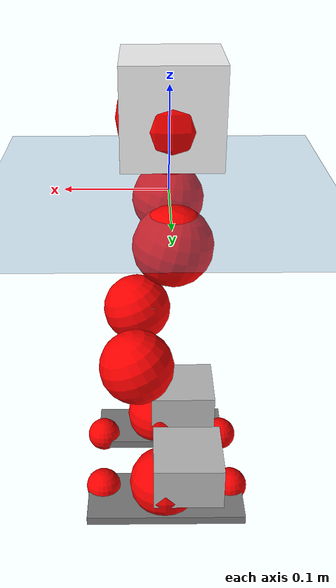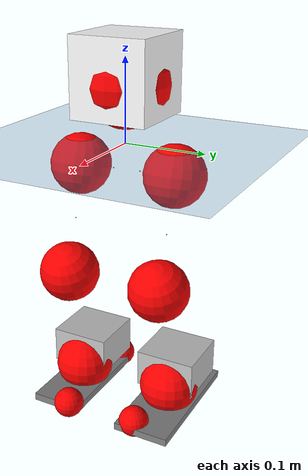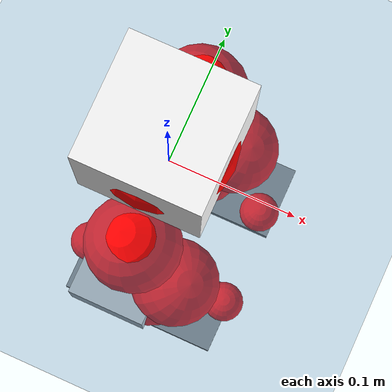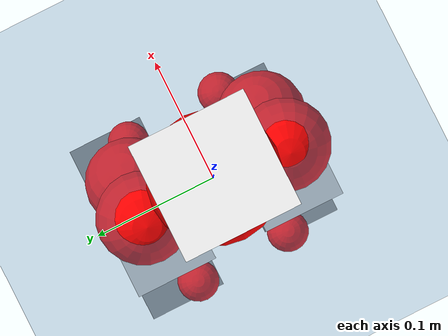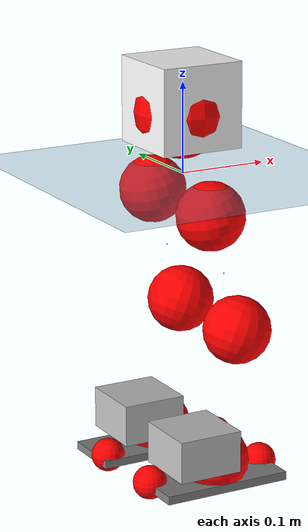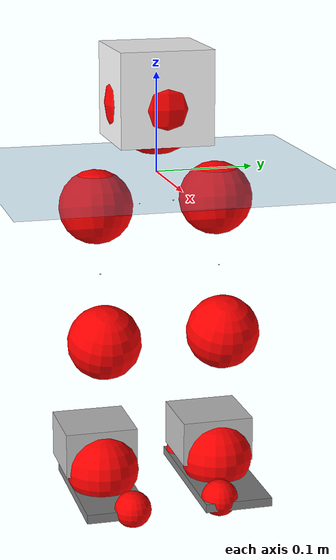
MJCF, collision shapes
<mujoco model="pi_12dof_release_v1">
  <compiler angle="radian" assetdir="assets" balanceinertia="true" inertiafromgeom="false"/>

  <option timestep="0.005" density="1.2" viscosity="2e-05"/>

  <size nkey="1"/>

  <visual>
    <quality shadowsize="8192"/>
    <map shadowclip="0.5"/>
  </visual>

  <default>
    <default class="/">
      <joint armature="0.01" damping="0.01" frictionloss="0.01"/>
      <geom contype="0" conaffinity="0" group="1" solref="-1000 -80"/>
      <site size="0.01 0.005 0.005" group="5"/>
      <general forcelimited="true" biastype="affine" gainprm="20" biasprm="0 -20 -0.5"/>
      <default class="foot">
        <geom size="0.0845 0.036 0.005" type="box" condim="6" group="4" priority="1" friction="0.9 0.2 0.2" solimp="0.015 1 0.005"/>
      </default>
      <default class="reward_collision_sphere">
        <geom group="5" rgba="1 0 0 1"/>
      </default>
    </default>
  </default>

  <asset>
    <texture type="skybox" colorspace="auto" name="//unnamed_texture_0" builtin="gradient" rgb1="0.95 0.95 0.95" rgb2="0.95 0.95 0.95" width="100" height="600"/>
    <texture type="2d" colorspace="auto" name="texplane" builtin="checker" rgb1="0.345 0.575 0.748" rgb2="0.345 0.575 0.748" markrgb="1 1 1" width="512" height="512"/>
    <material name="MatPlane" class="/" texture="texplane" texuniform="true" texrepeat="2 2" specular="0.9"/>
    <mesh name="baselink_1" class="/" file="baselink_1.STL"/>
    <mesh name="r_hip_pitch_link" class="/" file="r_hip_pitch_link.STL"/>
    <mesh name="r_hip_roll_link" class="/" file="r_hip_roll_link.STL"/>
    <mesh name="r_thigh_link" class="/" file="r_thigh_link.STL"/>
    <mesh name="r_calf_link" class="/" file="r_calf_link.STL"/>
    <mesh name="r_ankle_pitch_link" class="/" file="r_ankle_pitch_link.STL"/>
    <mesh name="r_ankle_roll_link" class="/" file="r_ankle_roll_link.STL"/>
    <mesh name="l_hip_pitch_link" class="/" file="l_hip_pitch_link.STL"/>
    <mesh name="l_hip_roll_link" class="/" file="l_hip_roll_link.STL"/>
    <mesh name="l_thigh_link" class="/" file="l_thigh_link.STL"/>
    <mesh name="l_calf_link" class="/" file="l_calf_link.STL"/>
    <mesh name="l_ankle_pitch_link" class="/" file="l_ankle_pitch_link.STL"/>
    <mesh name="l_ankle_roll_link" class="/" file="l_ankle_roll_link.STL"/>
  </asset>

  <worldbody>
    <geom name="floor" class="/" size="100 100 0.125" type="plane" group="0" material="MatPlane"/>
    <light name="toplight_shadow" class="/" pos="0 0 5" dir="0.0990148 0.0990148 -0.990148" type="directional" ambient="0.04 0.04 0.04" diffuse="0.55 0.55 0.55" specular="0.12 0.12 0.12"/>
    <light name="toplight_fill" class="/" pos="0 0 5" dir="0.0990148 0.0990148 -0.990148" type="directional" castshadow="false" ambient="0.04 0.04 0.04" diffuse="0.3 0.3 0.3" specular="0.08 0.08 0.08"/>
    <body name="trunk" pos="-0.00166811 0.000158784 0.000921751" quat="1 2.859e-05 0.000280223 4.01296e-05">
      <inertial pos="0.000464412 0.000127892 0.0398028" quat="0.695862 0.00656111 0.00628668 0.718118" mass="1.787" diaginertia="0.0114129 0.00318234 0.00380049"/>
      <joint name="//unnamed_joint_0" type="free"/>
      <geom name="//unnamed_geom_1" class="/" type="mesh" density="0" rgba="1 1 1 1" mesh="baselink_1"/>
      <geom name="//unnamed_geom_2" class="/" size="0.0469955 0.0469955 0.0469955" pos="0 0 0.0783084" type="box" rgba="1 1 1 1"/>
      <geom name="//unnamed_geom_3" class="reward_collision_sphere" size="0.051695" pos="0 0 0.0685198"/>
      <site name="imu" class="/" pos="-0.00167203 -0.00416211 0.00157501" size="0.0093991"/>
      <camera name="track" class="/" pos="0 -1.62217 0" quat="0.707107 0.707107 0 0" mode="trackcom"/>
      <camera name="ego_camera" class="/" pos="0.0772342 0 0.176194" quat="-0.5 -0.5 0.5 0.5"/>
      <body name="r_hip_pitch_link" pos="0.000316557 -0.0171016 -0.033339" quat="0.992221 -0.000224935 -0.12449 -0.000644863">
        <inertial pos="-0.000849423 -0.0451091 0.00120314" quat="-0.0192486 0.706183 -0.0281054 0.707209" mass="0.309046" diaginertia="0.000126534 3.42299e-05 7.47813e-05"/>
        <joint name="r_hip_pitch_joint" class="/" pos="0 0 0" axis="-0.0046914 -0.999983 -0.00337029" range="-1.74682 1.23727" armature="0.00943881" damping="0.0171113" frictionloss="0.00936229"/>
        <geom name="//unnamed_geom_4" class="/" type="mesh" density="0" rgba="0.75294 0.75294 0.75294 1" mesh="r_hip_pitch_link"/>
        <geom name="//unnamed_geom_5" class="/" size="0.000469955 0.000469955 0.000469955" type="box" rgba="0.75294 0.75294 0.75294 1"/>
        <body name="r_hip_roll_link" pos="8.57487e-05 -0.0452031 -0.000706104" quat="1 -2.51685e-06 2.39591e-06 -2.43303e-07">
          <inertial pos="0.00059305 0.000313279 -0.059413" quat="0.70621 -0.0793967 -0.0822322 0.698714" mass="0.324021" diaginertia="0.000386319 9.7546e-05 0.000117018"/>
          <joint name="r_hip_roll_joint" class="/" pos="0 0 0" axis="-0.999999 -0.000738497 -0.000697752" range="-0.133495 0.477245" armature="0.00875501" damping="0.00422284" frictionloss="0.00925377"/>
          <geom name="//unnamed_geom_6" class="/" type="mesh" density="0" rgba="0.75294 0.75294 0.75294 1" mesh="r_hip_roll_link"/>
          <geom name="//unnamed_geom_7" class="/" size="0.000469955 0.000469955 0.000469955" type="box" rgba="0.75294 0.75294 0.75294 1"/>
          <geom name="//unnamed_geom_8" class="reward_collision_sphere" size="0.0375964"/>
          <body name="r_thigh_link" pos="3.44421e-06 0.000317413 -0.0677259" quat="1 0.000170635 3.49714e-06 -0.000198351">
            <inertial pos="-0.000178961 5.46511e-05 -0.0466485" quat="0.740842 0.671678 0.00110301 0.000155599" mass="0.093127" diaginertia="0.000145881 3.28272e-05 5.22838e-05"/>
            <joint name="r_thigh_joint" class="/" pos="0 0 0" axis="0.00051015 -0.000538317 -1" range="-0.301148 0.582609" armature="0.00893891" damping="0" frictionloss="0.00941251"/>
            <geom name="//unnamed_geom_9" class="/" type="mesh" density="0" rgba="0.75294 0.75294 0.75294 1" mesh="r_thigh_link"/>
            <geom name="//unnamed_geom_10" class="/" size="0.000469955 0.000469955 0.000469955" type="box" rgba="0.75294 0.75294 0.75294 1"/>
            <body name="r_calf_link" pos="-1.88429e-05 -0.000283345 -0.0685251" quat="0.947692 0.000235271 0.319185 -0.000381646">
              <inertial pos="-7.49468e-05 -0.00124715 -0.0683281" quat="0.999986 -0.00334192 -0.000356624 0.0039807" mass="0.692613" diaginertia="0.00404202 0.00122338 0.000157504"/>
              <joint name="r_calf_joint" class="/" pos="0 0 0" axis="0.00110194 -0.999999 5.13743e-05" stiffness="0.002705" range="-1.64947 0.628216" armature="0.0104391" damping="0" frictionloss="0.010321"/>
              <geom name="//unnamed_geom_11" class="/" type="mesh" density="0" rgba="0.75294 0.75294 0.75294 1" mesh="r_calf_link"/>
              <geom name="//unnamed_geom_12" class="/" size="0.000469955 0.000469955 0.000469955" type="box" rgba="0.75294 0.75294 0.75294 1"/>
              <geom name="//unnamed_geom_13" class="reward_collision_sphere" size="0.0375964"/>
              <body name="r_ankle_pitch_link" pos="0.000272354 0.000169374 -0.136228" quat="0.980083 -5.97086e-05 -0.198588 -0.000861552">
                <inertial pos="0.00494315 0.000984081 0.000187239" quat="0.00379974 0.70863 -0.00238803 0.705566" mass="0.143926" diaginertia="0.00036049 7.96403e-05 0.000108075"/>
                <joint name="r_ankle_pitch_joint" class="/" pos="0 0 0" axis="-0.00962317 -0.99994 -0.00522482" range="-1.30836 0.50844" armature="0.00913634" damping="0.0098545" frictionloss="0.00952698"/>
                <geom name="//unnamed_geom_14" class="/" type="mesh" density="0" rgba="0.75294 0.75294 0.75294 1" mesh="r_ankle_pitch_link"/>
                <geom name="//unnamed_geom_15" class="/" size="0.0366565 0.0375964 0.0234977" type="box" rgba="0.75294 0.75294 0.75294 1"/>
                <body name="r_ankle_roll_link" pos="0.0786328 0.00238323 -0.000394637" quat="1 -1.14418e-05 -6.8177e-05 -3.66659e-05">
                  <inertial pos="-0.0256159 9.42756e-05 -0.0139726" quat="0.558422 0.430489 0.433507 0.561174" mass="0.432821" diaginertia="0.00133591 0.000365119 0.000256033"/>
                  <joint name="r_ankle_roll_joint" class="/" pos="0 0 0" axis="-0.999929 -0.00247484 -0.0116234" range="-0.15931 0.136921" armature="0.00953543" damping="0.00549418" frictionloss="0.00929764"/>
                  <geom name="//unnamed_geom_16" class="/" type="mesh" density="0" rgba="0.75294 0.75294 0.75294 1" mesh="r_ankle_roll_link"/>
                  <geom name="//unnamed_geom_17" class="/" type="mesh" rgba="0.75294 0.75294 0.75294 1" mesh="r_ankle_roll_link"/>
                  <geom name="right_foot" class="foot" size="0.0738832 0.0321835 0.00478537" pos="-0.0525193 0 -0.0430696"/>
                  <geom name="//unnamed_geom_19" class="reward_collision_sphere" size="0.0375964" pos="-0.0514895 0 -0.0195771"/>
                  <geom name="//unnamed_geom_20" class="reward_collision_sphere" size="0.0187982" pos="0.0154468 0.0162217 -0.0391542"/>
                  <geom name="//unnamed_geom_21" class="reward_collision_sphere" size="0.0187982" pos="-0.123575 0.0162217 -0.0391542"/>
                  <site name="right_foot" class="foot" pos="-0.0525193 0 -0.0430696" size="0.0093991"/>
                </body>
              </body>
            </body>
          </body>
        </body>
      </body>
      <body name="l_hip_pitch_link" pos="0.000347724 0.018122 -0.0320764" quat="0.992143 4.54609e-05 -0.125108 0.0010405">
        <inertial pos="0.00252605 0.0439287 -0.000358232" quat="-0.0383809 0.705709 0.0297111 0.706837" mass="0.323249" diaginertia="0.000148393 3.68498e-05 9.0567e-05"/>
        <joint name="l_hip_pitch_joint" class="/" pos="0 0 0" axis="0.000144726 0.999998 -0.00219528" range="-1.26117 1.74617" armature="0.00952095" damping="0.00156208" frictionloss="0.00893832"/>
        <geom name="//unnamed_geom_22" class="/" type="mesh" density="0" rgba="0.75294 0.75294 0.75294 1" mesh="l_hip_pitch_link"/>
        <geom name="//unnamed_geom_23" class="/" size="0.000469955 0.000469955 0.000469955" type="box" rgba="0.75294 0.75294 0.75294 1"/>
        <body name="l_hip_roll_link" pos="-0.000913454 0.0446884 0.000449973" quat="1 3.9212e-05 -3.83258e-05 -0.000717925">
          <inertial pos="-0.00123275 -0.000404794 -0.0600614" quat="0.700565 -0.079453 -0.079835 0.704643" mass="0.319351" diaginertia="0.000383769 9.6927e-05 0.00011442"/>
          <joint name="l_hip_roll_joint" class="/" pos="0 0 0" axis="-0.999981 -0.0014486 -0.00601516" stiffness="0.0031161" range="-0.489575 0.135029" armature="0.00943301" damping="0" frictionloss="0.00894253"/>
          <geom name="//unnamed_geom_24" class="/" type="mesh" density="0" rgba="0.75294 0.75294 0.75294 1" mesh="l_hip_roll_link"/>
          <geom name="//unnamed_geom_25" class="/" size="0.000469955 0.000469955 0.000469955" type="box" rgba="0.75294 0.75294 0.75294 1"/>
          <geom name="//unnamed_geom_26" class="reward_collision_sphere" size="0.0375964"/>
          <body name="l_thigh_link" pos="0.000411868 -0.000888721 -0.0685617" quat="1 7.80873e-05 -0.000100339 4.5931e-05">
            <inertial pos="0.000324963 -0.00156287 -0.0475545" quat="0.675308 0.737535 0.000721282 9.96757e-06" mass="0.0940599" diaginertia="0.000144618 3.31721e-05 5.21821e-05"/>
            <joint name="l_thigh_joint" class="/" pos="0 0 0" axis="-0.000619429 -0.00047129 -1" range="-0.603328 0.286463" armature="0.00983255" damping="0.00333597" frictionloss="0.00914555"/>
            <geom name="//unnamed_geom_27" class="/" type="mesh" density="0" rgba="0.75294 0.75294 0.75294 1" mesh="l_thigh_link"/>
            <geom name="//unnamed_geom_28" class="/" size="0.000469955 0.000469955 0.000469955" type="box" rgba="0.75294 0.75294 0.75294 1"/>
            <body name="l_calf_link" pos="0.000122194 -0.000714036 -0.0683177" quat="0.947661 -5.70001e-05 0.319279 4.82665e-05">
              <inertial pos="0.000183845 0.00250901 -0.0685805" quat="0.999965 -0.000549555 -0.00498395 0.00672838" mass="0.678261" diaginertia="0.00405332 0.00122444 0.000159251"/>
              <joint name="l_calf_joint" class="/" pos="0 0 0" axis="0.000459471 0.999999 -0.00160983" stiffness="0.00421284" range="-0.657723 1.66312" armature="0.00853539" damping="0.00511124" frictionloss="0.0102148"/>
              <geom name="//unnamed_geom_29" class="/" type="mesh" density="0" rgba="0.75294 0.75294 0.75294 1" mesh="l_calf_link"/>
              <geom name="//unnamed_geom_30" class="/" size="0.000469955 0.000469955 0.000469955" type="box" rgba="0.75294 0.75294 0.75294 1"/>
              <geom name="//unnamed_geom_31" class="reward_collision_sphere" size="0.0375964"/>
              <body name="l_ankle_pitch_link" pos="0.000314327 0.00176247 -0.13763" quat="0.980122 0.000250931 -0.198394 -0.000260255">
                <inertial pos="0.00517722 0.000168644 -0.000420011" quat="-0.00159467 0.70759 0.00283039 0.706616" mass="0.149481" diaginertia="0.000364535 7.85007e-05 0.000107091"/>
                <joint name="l_ankle_pitch_joint" class="/" pos="0 0 0" axis="-0.00209724 0.999998 -0.000253562" range="-0.508127 1.30063" armature="0.00941175" damping="0.00308972" frictionloss="0.00893529"/>
                <geom name="//unnamed_geom_32" class="/" type="mesh" density="0" rgba="0.75294 0.75294 0.75294 1" mesh="l_ankle_pitch_link"/>
                <geom name="//unnamed_geom_33" class="/" size="0.0366565 0.0375964 0.0234977" type="box" rgba="0.75294 0.75294 0.75294 1"/>
                <body name="l_ankle_roll_link" pos="0.0757939 0.00163719 0.000363405" quat="1 -1.74213e-05 1.84549e-05 -4.09108e-06">
                  <inertial pos="-0.0233156 -4.4433e-05 -0.0151141" quat="0.561752 0.426628 0.434274 0.560205" mass="0.431303" diaginertia="0.00126767 0.000353925 0.000247784"/>
                  <joint name="l_ankle_roll_joint" class="/" pos="0 0 0" axis="-0.999993 -0.00296764 0.00229269" range="-0.144815 0.150713" armature="0.00943363" damping="0.00345931" frictionloss="0.0093293"/>
                  <geom name="//unnamed_geom_34" class="/" type="mesh" density="0" rgba="0.75294 0.75294 0.75294 1" mesh="l_ankle_roll_link"/>
                  <geom name="//unnamed_geom_35" class="/" type="mesh" rgba="0.75294 0.75294 0.75294 1" mesh="l_ankle_roll_link"/>
                  <geom name="left_foot" class="foot" size="0.0838477 0.0350112 0.00454587" pos="-0.0525193 0 -0.0430696"/>
                  <geom name="//unnamed_geom_37" class="reward_collision_sphere" size="0.0375964" pos="-0.0514895 0 -0.0195771"/>
                  <geom name="//unnamed_geom_38" class="reward_collision_sphere" size="0.0187982" pos="0.0154468 -0.0162217 -0.0391542"/>
                  <geom name="//unnamed_geom_39" class="reward_collision_sphere" size="0.0187982" pos="-0.123575 -0.0162217 -0.0391542"/>
                  <site name="left_foot" class="foot" pos="-0.0525193 0 -0.0430696" size="0.0093991"/>
                </body>
              </body>
            </body>
          </body>
        </body>
      </body>
    </body>
  </worldbody>

  <contact>
    <pair class="/" geom1="floor" geom2="right_foot" name="//unnamed_contact_1"/>
    <pair class="/" geom1="floor" geom2="left_foot" name="//unnamed_contact_0"/>
  </contact>

  <actuator>
    <general name="r_hip_pitch_joint" class="/" joint="r_hip_pitch_joint" forcerange="-19.6509 19.6509" gainprm="19.1246" biasprm="0 -19.1246 -0.484234"/>
    <general name="r_hip_roll_joint" class="/" joint="r_hip_roll_joint" forcerange="-19.8608 19.8608" gainprm="19.1246" biasprm="0 -19.1246 -0.484234"/>
    <general name="r_thigh_joint" class="/" joint="r_thigh_joint" forcerange="-19.6896 19.6896" gainprm="19.1246" biasprm="0 -19.1246 -0.484234"/>
    <general name="r_calf_joint" class="/" joint="r_calf_joint" forcerange="-19.4336 19.4336" gainprm="19.1246" biasprm="0 -19.1246 -0.484234"/>
    <general name="r_ankle_pitch_joint" class="/" joint="r_ankle_pitch_joint" forcerange="-19.909 19.909" gainprm="19.1246" biasprm="0 -19.1246 -0.484234"/>
    <general name="r_ankle_roll_joint" class="/" joint="r_ankle_roll_joint" forcerange="-19.4888 19.4888" gainprm="19.1246" biasprm="0 -19.1246 -0.484234"/>
    <general name="l_hip_pitch_joint" class="/" joint="l_hip_pitch_joint" forcerange="-19.9073 19.9073" gainprm="19.1246" biasprm="0 -19.1246 -0.484234"/>
    <general name="l_hip_roll_joint" class="/" joint="l_hip_roll_joint" forcerange="-20.4419 20.4419" gainprm="19.1246" biasprm="0 -19.1246 -0.484234"/>
    <general name="l_thigh_joint" class="/" joint="l_thigh_joint" forcerange="-19.6949 19.6949" gainprm="19.1246" biasprm="0 -19.1246 -0.484234"/>
    <general name="l_calf_joint" class="/" joint="l_calf_joint" forcerange="-21.198 21.198" gainprm="19.1246" biasprm="0 -19.1246 -0.484234"/>
    <general name="l_ankle_pitch_joint" class="/" joint="l_ankle_pitch_joint" forcerange="-19.7382 19.7382" gainprm="19.1246" biasprm="0 -19.1246 -0.484234"/>
    <general name="l_ankle_roll_joint" class="/" joint="l_ankle_roll_joint" forcerange="-19.6165 19.6165" gainprm="19.1246" biasprm="0 -19.1246 -0.484234"/>
  </actuator>

  <sensor>
    <gyro site="imu" name="imu_angular_velocity"/>
    <velocimeter site="imu" name="imu_linear_velocity"/>
    <framelinvel objtype="site" objname="left_foot" name="left_foot_global_linear_velocity"/>
    <framelinvel objtype="site" objname="right_foot" name="right_foot_global_linear_velocity"/>
  </sensor>

  <keyframe>
    <key name="home" qpos="0 0 0.291 1 0 0 0 0.4 0 0 -0.8 0.4 0 -0.4 0 0 0.8 -0.4 0"/>
  </keyframe>
</mujoco>
